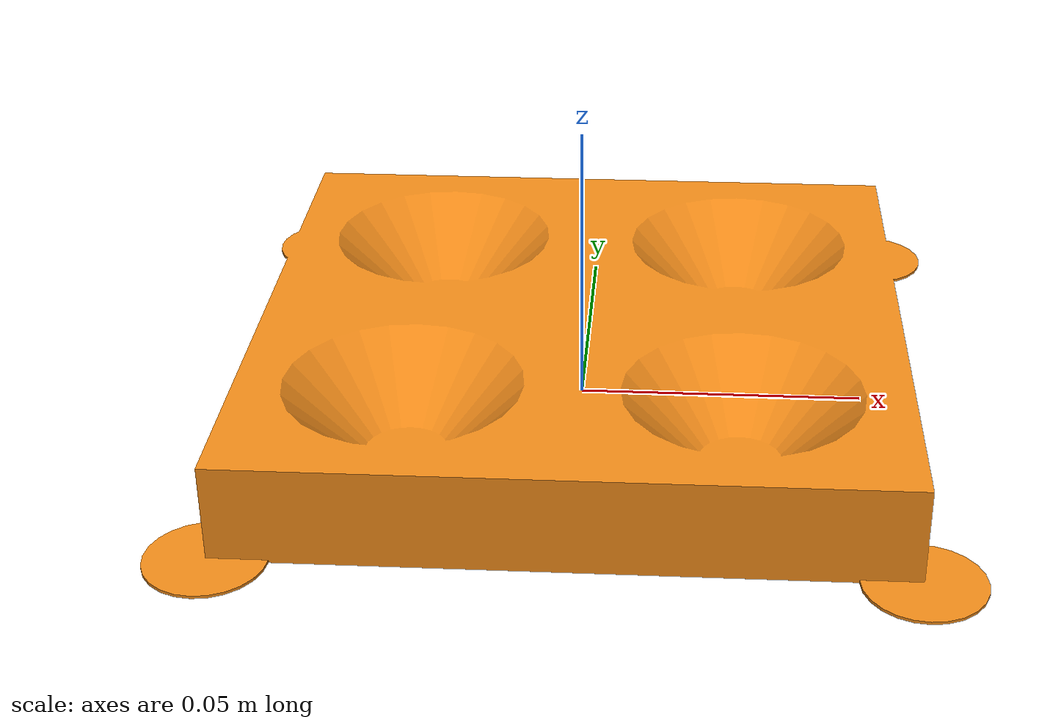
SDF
<?xml version="1.0" encoding="UTF-8"?>
<sdf version="1.5">
   <model name="sku_small_gear_vessel">
            <link name="link1">
                <collision name="collision1">
                    <pose frame="">0 0 0 0 0 0</pose>
                    <geometry>
                        <mesh>
                            <scale>0.0254 0.0254 0.0254</scale>
                            <uri>model://gear_support/meshes/small_gear_holder_Centered_ZeroZmin.stl</uri>
                        </mesh>
                    </geometry>
                    <max_contacts>10</max_contacts>
                    <surface>
                        <contact>
                            <ode />
                        </contact>
                        <bounce />
                        <friction>
                            <torsional>
                                <ode />
                            </torsional>
                            <ode />
                        </friction>
                    </surface>
                </collision>
                <visual name="visual1">
                    <pose frame="">0 0 0 0 0 0</pose>
                    <geometry>
                        <mesh>
                            <scale>0.0254 0.0254 0.0254</scale>
                            <uri>model://gear_support/meshes/small_gear_holder_Centered_ZeroZmin.stl</uri>
                        </mesh>
                    </geometry>
                    <material>
                        <script>
                            <name>Gazebo/Orange</name>
                            <uri>__default__</uri>
                        </script>
                    </material>
                </visual>
                <inertial>
                    <mass>0.39</mass>
                    <inertia>
                        <ixx>1.91071229e+01</ixx>
                        <ixy>2.84737024e-07</ixy>
                        <ixz>2.16999641e-07</ixz>
                        <iyy>1.91071221e+01</iyy>
                        <iyz>-1.18455844e-07</iyz>
                        <izz>3.74139992e+01</izz>
                    </inertia>
                </inertial>
                <self_collide>0</self_collide>
                <kinematic>0</kinematic>
                <gravity>1</gravity>
            </link>
   </model>
</sdf>
